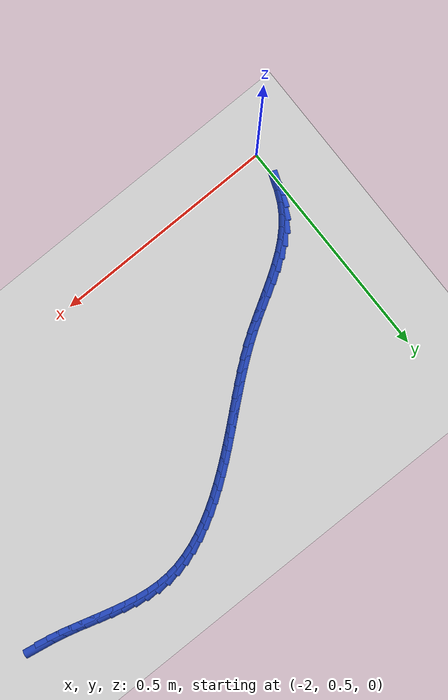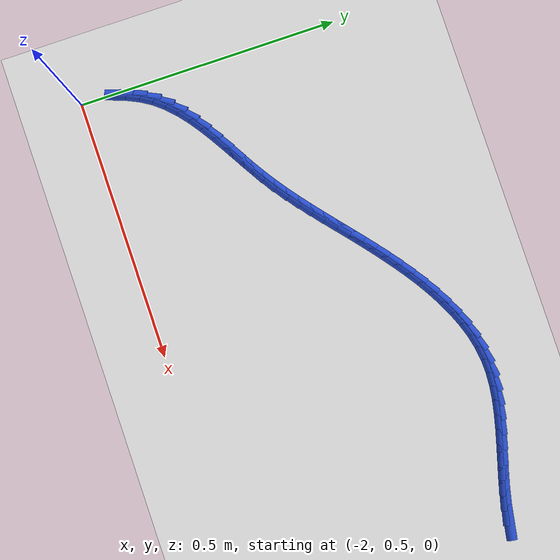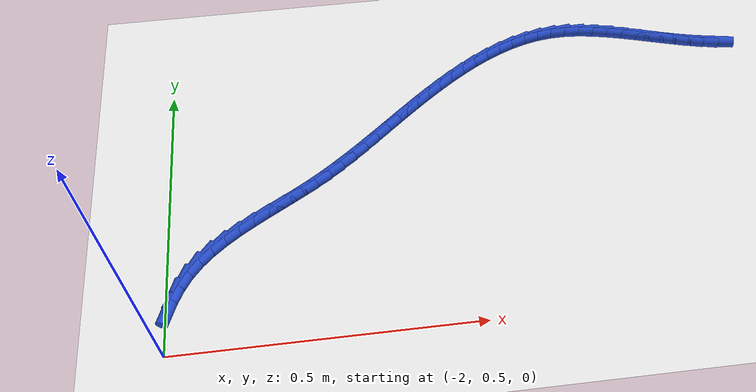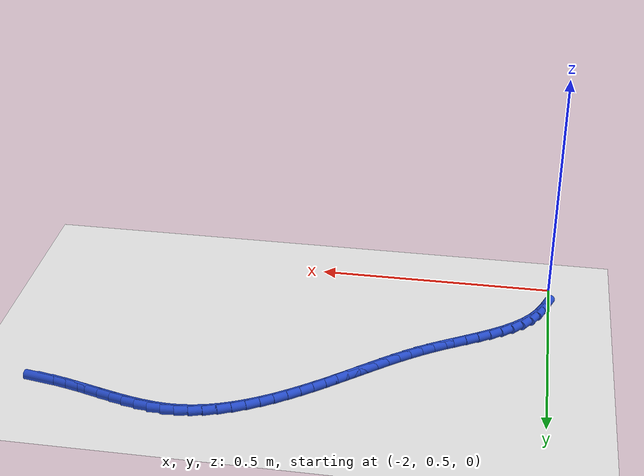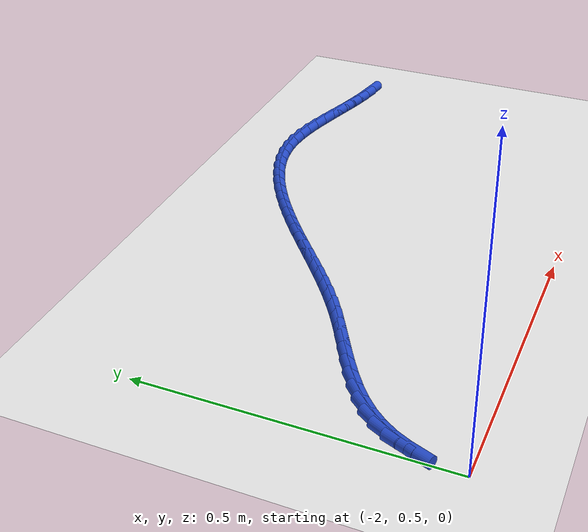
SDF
<sdf version="1.6">
 <world name="default">
  <model name="ground_plane">
   <static>1</static>
   <link name="link">
    <collision name="collision">
     <geometry><plane><normal>0 0 1</normal><size>100 100</size></plane></geometry>
     <surface><friction><ode><mu>100</mu><mu2>50</mu2></ode></friction></surface>
    </collision>
    <visual name="visual">
     <cast_shadows>0</cast_shadows>
     <geometry><plane><normal>0 0 1</normal><size>100 100</size></plane></geometry>
     <material>
      <script><uri>file://media/materials/scripts/gazebo.material</uri><name>Gazebo/WhiteGlow</name></script>
     </material>
    </visual>
   </link>
  </model>
  <model name="line">
   <link name="link_60">
    <pose>-1.0151019509358852 1.0095823974096465 0.01 0 1.57 -0.17348990089580207</pose>
    <collision name="collision">
     <geometry><cylinder><radius>0.01</radius><length>0.08</length></cylinder></geometry>
    </collision>
    <visual name="visual">
     <material>
      <script><name>Gazebo/Blue</name><uri>file://media/materials/scripts/gazebo.material</uri></script>
     </material>
     <geometry><cylinder><radius>0.01</radius><length>0.08</length></cylinder></geometry>
    </visual>
   </link>
   <link name="link_61">
    <pose>-1.0420311237832824 1.0143017814009399 0.01 0 1.57 -0.2217252626227899</pose>
    <collision name="collision">
     <geometry><cylinder><radius>0.01</radius><length>0.08</length></cylinder></geometry>
    </collision>
    <visual name="visual">
     <material>
      <script><name>Gazebo/Blue</name><uri>file://media/materials/scripts/gazebo.material</uri></script>
     </material>
     <geometry><cylinder><radius>0.01</radius><length>0.08</length></cylinder></geometry>
    </visual>
   </link>
   <link name="link_62">
    <pose>-1.0689707790428966 1.0203748325514117 0.01 0 1.57 -0.2544019854768257</pose>
    <collision name="collision">
     <geometry><cylinder><radius>0.01</radius><length>0.08</length></cylinder></geometry>
    </collision>
    <visual name="visual">
     <material>
      <script><name>Gazebo/Blue</name><uri>file://media/materials/scripts/gazebo.material</uri></script>
     </material>
     <geometry><cylinder><radius>0.01</radius><length>0.08</length></cylinder></geometry>
    </visual>
   </link>
   <link name="link_63">
    <pose>-1.095900998937153 1.0273776651554178 0.01 0 1.57 -0.27219795656285345</pose>
    <collision name="collision">
     <geometry><cylinder><radius>0.01</radius><length>0.08</length></cylinder></geometry>
    </collision>
    <visual name="visual">
     <material>
      <script><name>Gazebo/Blue</name><uri>file://media/materials/scripts/gazebo.material</uri></script>
     </material>
     <geometry><cylinder><radius>0.01</radius><length>0.08</length></cylinder></geometry>
    </visual>
   </link>
   <link name="link_64">
    <pose>-1.1228018656884784 1.0348863935073147 0.01 0 1.57 -0.27550348878206676</pose>
    <collision name="collision">
     <geometry><cylinder><radius>0.01</radius><length>0.08</length></cylinder></geometry>
    </collision>
    <visual name="visual">
     <material>
      <script><name>Gazebo/Blue</name><uri>file://media/materials/scripts/gazebo.material</uri></script>
     </material>
     <geometry><cylinder><radius>0.01</radius><length>0.08</length></cylinder></geometry>
    </visual>
   </link>
   <link name="link_65">
    <pose>-1.1496534615192986 1.042477131901458 0.01 0 1.57 -0.26432467537369103</pose>
    <collision name="collision">
     <geometry><cylinder><radius>0.01</radius><length>0.08</length></cylinder></geometry>
    </collision>
    <visual name="visual">
     <material>
      <script><name>Gazebo/Blue</name><uri>file://media/materials/scripts/gazebo.material</uri></script>
     </material>
     <geometry><cylinder><radius>0.01</radius><length>0.08</length></cylinder></geometry>
    </visual>
   </link>
   <link name="link_66">
    <pose>-1.1764358686520393 1.049725994632204 0.01 0 1.57 -0.23826041667342834</pose>
    <collision name="collision">
     <geometry><cylinder><radius>0.01</radius><length>0.08</length></cylinder></geometry>
    </collision>
    <visual name="visual">
     <material>
      <script><name>Gazebo/Blue</name><uri>file://media/materials/scripts/gazebo.material</uri></script>
     </material>
     <geometry><cylinder><radius>0.01</radius><length>0.08</length></cylinder></geometry>
    </visual>
   </link>
   <link name="link_67">
    <pose>-1.2031291693091266 1.0562090959939079 0.01 0 1.57 -0.19654901584674972</pose>
    <collision name="collision">
     <geometry><cylinder><radius>0.01</radius><length>0.08</length></cylinder></geometry>
    </collision>
    <visual name="visual">
     <material>
      <script><name>Gazebo/Blue</name><uri>file://media/materials/scripts/gazebo.material</uri></script>
     </material>
     <geometry><cylinder><radius>0.01</radius><length>0.08</length></cylinder></geometry>
    </visual>
   </link>
   <link name="link_68">
    <pose>-1.2297134457129866 1.061502550280926 0.01 0 1.57 -0.1382125585753608</pose>
    <collision name="collision">
     <geometry><cylinder><radius>0.01</radius><length>0.08</length></cylinder></geometry>
    </collision>
    <visual name="visual">
     <material>
      <script><name>Gazebo/Blue</name><uri>file://media/materials/scripts/gazebo.material</uri></script>
     </material>
     <geometry><cylinder><radius>0.01</radius><length>0.08</length></cylinder></geometry>
    </visual>
   </link>
   <link name="link_69">
    <pose>-1.2561687800860453 1.0651824717876144 0.01 0 1.57 -0.06235626952176293</pose>
    <collision name="collision">
     <geometry><cylinder><radius>0.01</radius><length>0.08</length></cylinder></geometry>
    </collision>
    <visual name="visual">
     <material>
      <script><name>Gazebo/Blue</name><uri>file://media/materials/scripts/gazebo.material</uri></script>
     </material>
     <geometry><cylinder><radius>0.01</radius><length>0.08</length></cylinder></geometry>
    </visual>
   </link>
   <link name="link_70">
    <pose>-1.282475254650729 1.066824974808329 0.01 0 1.57 0.0313038524707301</pose>
    <collision name="collision">
     <geometry><cylinder><radius>0.01</radius><length>0.08</length></cylinder></geometry>
    </collision>
    <visual name="visual">
     <material>
      <script><name>Gazebo/Blue</name><uri>file://media/materials/scripts/gazebo.material</uri></script>
     </material>
     <geometry><cylinder><radius>0.01</radius><length>0.08</length></cylinder></geometry>
    </visual>
   </link>
   <link name="link_71">
    <pose>-1.3086129426936903 1.0660064971098333 0.01 0 1.57 0.1354745483552707</pose>
    <collision name="collision">
     <geometry><cylinder><radius>0.01</radius><length>0.08</length></cylinder></geometry>
    </collision>
    <visual name="visual">
     <material>
      <script><name>Gazebo/Blue</name><uri>file://media/materials/scripts/gazebo.material</uri></script>
     </material>
     <geometry><cylinder><radius>0.01</radius><length>0.08</length></cylinder></geometry>
    </visual>
   </link>
   <link name="link_72">
    <pose>-1.3345573164568127 1.0624700329481653 0.01 0 1.57 0.2319395188891165</pose>
    <collision name="collision">
     <geometry><cylinder><radius>0.01</radius><length>0.08</length></cylinder></geometry>
    </collision>
    <visual name="visual">
     <material>
      <script><name>Gazebo/Blue</name><uri>file://media/materials/scripts/gazebo.material</uri></script>
     </material>
     <geometry><cylinder><radius>0.01</radius><length>0.08</length></cylinder></geometry>
    </visual>
   </link>
   <link name="link_73">
    <pose>-1.3602717497239893 1.0563965372578765 0.01 0 1.57 0.317375319440781</pose>
    <collision name="collision">
     <geometry><cylinder><radius>0.01</radius><length>0.08</length></cylinder></geometry>
    </collision>
    <visual name="visual">
     <material>
      <script><name>Gazebo/Blue</name><uri>file://media/materials/scripts/gazebo.material</uri></script>
     </material>
     <geometry><cylinder><radius>0.01</radius><length>0.08</length></cylinder></geometry>
    </visual>
   </link>
   <link name="link_74">
    <pose>-1.385717651409943 1.0480380926689317 0.01 0 1.57 0.3919684377687647</pose>
    <collision name="collision">
     <geometry><cylinder><radius>0.01</radius><length>0.08</length></cylinder></geometry>
    </collision>
    <visual name="visual">
     <material>
      <script><name>Gazebo/Blue</name><uri>file://media/materials/scripts/gazebo.material</uri></script>
     </material>
     <geometry><cylinder><radius>0.01</radius><length>0.08</length></cylinder></geometry>
    </visual>
   </link>
   <link name="link_75">
    <pose>-1.4108564304293956 1.037646781811295 0.01 0 1.57 0.456379453697414</pose>
    <collision name="collision">
     <geometry><cylinder><radius>0.01</radius><length>0.08</length></cylinder></geometry>
    </collision>
    <visual name="visual">
     <material>
      <script><name>Gazebo/Blue</name><uri>file://media/materials/scripts/gazebo.material</uri></script>
     </material>
     <geometry><cylinder><radius>0.01</radius><length>0.08</length></cylinder></geometry>
    </visual>
   </link>
   <link name="link_76">
    <pose>-1.4356494956970693 1.0254746873149307 0.01 0 1.57 0.5114823510553568</pose>
    <collision name="collision">
     <geometry><cylinder><radius>0.01</radius><length>0.08</length></cylinder></geometry>
    </collision>
    <visual name="visual">
     <material>
      <script><name>Gazebo/Blue</name><uri>file://media/materials/scripts/gazebo.material</uri></script>
     </material>
     <geometry><cylinder><radius>0.01</radius><length>0.08</length></cylinder></geometry>
    </visual>
   </link>
   <link name="link_77">
    <pose>-1.4600582561276858 1.0117738918098034 0.01 0 1.57 0.5581869383137341</pose>
    <collision name="collision">
     <geometry><cylinder><radius>0.01</radius><length>0.08</length></cylinder></geometry>
    </collision>
    <visual name="visual">
     <material>
      <script><name>Gazebo/Blue</name><uri>file://media/materials/scripts/gazebo.material</uri></script>
     </material>
     <geometry><cylinder><radius>0.01</radius><length>0.08</length></cylinder></geometry>
    </visual>
   </link>
   <link name="link_78">
    <pose>-1.4840441206359687 0.9967964779258773 0.01 0 1.57 0.5973328220931737</pose>
    <collision name="collision">
     <geometry><cylinder><radius>0.01</radius><length>0.08</length></cylinder></geometry>
    </collision>
    <visual name="visual">
     <material>
      <script><name>Gazebo/Blue</name><uri>file://media/materials/scripts/gazebo.material</uri></script>
     </material>
     <geometry><cylinder><radius>0.01</radius><length>0.08</length></cylinder></geometry>
    </visual>
   </link>
   <link name="link_79">
    <pose>-1.50756849813664 0.9807945282931176 0.01 0 1.57 0.6296325864887741</pose>
    <collision name="collision">
     <geometry><cylinder><radius>0.01</radius><length>0.08</length></cylinder></geometry>
    </collision>
    <visual name="visual">
     <material>
      <script><name>Gazebo/Blue</name><uri>file://media/materials/scripts/gazebo.material</uri></script>
     </material>
     <geometry><cylinder><radius>0.01</radius><length>0.08</length></cylinder></geometry>
    </visual>
   </link>
   <link name="link_80">
    <pose>-1.5305927975444213 0.9640201255414883 0.01 0 1.57 0.6556435045871363</pose>
    <collision name="collision">
     <geometry><cylinder><radius>0.01</radius><length>0.08</length></cylinder></geometry>
    </collision>
    <visual name="visual">
     <material>
      <script><name>Gazebo/Blue</name><uri>file://media/materials/scripts/gazebo.material</uri></script>
     </material>
     <geometry><cylinder><radius>0.01</radius><length>0.08</length></cylinder></geometry>
    </visual>
   </link>
   <link name="link_81">
    <pose>-1.553078427774035 0.9467253523009532 0.01 0 1.57 0.675752611051536</pose>
    <collision name="collision">
     <geometry><cylinder><radius>0.01</radius><length>0.08</length></cylinder></geometry>
    </collision>
    <visual name="visual">
     <material>
      <script><name>Gazebo/Blue</name><uri>file://media/materials/scripts/gazebo.material</uri></script>
     </material>
     <geometry><cylinder><radius>0.01</radius><length>0.08</length></cylinder></geometry>
    </visual>
   </link>
   <link name="link_82">
    <pose>-1.5749870564986381 0.9291620704523046 0.01 0 1.57 0.6902067509968366</pose>
    <collision name="collision">
     <geometry><cylinder><radius>0.01</radius><length>0.08</length></cylinder></geometry>
    </collision>
    <visual name="visual">
     <material>
      <script><name>Gazebo/Blue</name><uri>file://media/materials/scripts/gazebo.material</uri></script>
     </material>
     <geometry><cylinder><radius>0.01</radius><length>0.08</length></cylinder></geometry>
    </visual>
   </link>
   <link name="link_83">
    <pose>-1.5963386552855237 0.9115324022937841 0.01 0 1.57 0.6989801272872999</pose>
    <collision name="collision">
     <geometry><cylinder><radius>0.01</radius><length>0.08</length></cylinder></geometry>
    </collision>
    <visual name="visual">
     <material>
      <script><name>Gazebo/Blue</name><uri>file://media/materials/scripts/gazebo.material</uri></script>
     </material>
     <geometry><cylinder><radius>0.01</radius><length>0.08</length></cylinder></geometry>
    </visual>
   </link>
   <link name="link_84">
    <pose>-1.6172850144167623 0.8939260143787491 0.01 0 1.57 0.7018116798147105</pose>
    <collision name="collision">
     <geometry><cylinder><radius>0.01</radius><length>0.08</length></cylinder></geometry>
    </collision>
    <visual name="visual">
     <material>
      <script><name>Gazebo/Blue</name><uri>file://media/materials/scripts/gazebo.material</uri></script>
     </material>
     <geometry><cylinder><radius>0.01</radius><length>0.08</length></cylinder></geometry>
    </visual>
   </link>
   <link name="link_85">
    <pose>-1.637996032143512 0.8764171251873822 0.01 0 1.57 0.6985146719682829</pose>
    <collision name="collision">
     <geometry><cylinder><radius>0.01</radius><length>0.08</length></cylinder></geometry>
    </collision>
    <visual name="visual">
     <material>
      <script><name>Gazebo/Blue</name><uri>file://media/materials/scripts/gazebo.material</uri></script>
     </material>
     <geometry><cylinder><radius>0.01</radius><length>0.08</length></cylinder></geometry>
    </visual>
   </link>
   <link name="link_86">
    <pose>-1.658641606716928 0.859079953199866 0.01 0 1.57 0.6890098601482795</pose>
    <collision name="collision">
     <geometry><cylinder><radius>0.01</radius><length>0.08</length></cylinder></geometry>
    </collision>
    <visual name="visual">
     <material>
      <script><name>Gazebo/Blue</name><uri>file://media/materials/scripts/gazebo.material</uri></script>
     </material>
     <geometry><cylinder><radius>0.01</radius><length>0.08</length></cylinder></geometry>
    </visual>
   </link>
   <link name="link_87">
    <pose>-1.6793916363881651 0.841988716896382 0.01 0 1.57 0.673334946599743</pose>
    <collision name="collision">
     <geometry><cylinder><radius>0.01</radius><length>0.08</length></cylinder></geometry>
    </collision>
    <visual name="visual">
     <material>
      <script><name>Gazebo/Blue</name><uri>file://media/materials/scripts/gazebo.material</uri></script>
     </material>
     <geometry><cylinder><radius>0.01</radius><length>0.08</length></cylinder></geometry>
    </visual>
   </link>
   <link name="link_88">
    <pose>-1.7004160194083808 0.8252176347571134 0.01 0 1.57 0.6516557136667185</pose>
    <collision name="collision">
     <geometry><cylinder><radius>0.01</radius><length>0.08</length></cylinder></geometry>
    </collision>
    <visual name="visual">
     <material>
      <script><name>Gazebo/Blue</name><uri>file://media/materials/scripts/gazebo.material</uri></script>
     </material>
     <geometry><cylinder><radius>0.01</radius><length>0.08</length></cylinder></geometry>
    </visual>
   </link>
   <link name="link_89">
    <pose>-1.7218846540287305 0.8088409252622418 0.01 0 1.57 0.6242769112387478</pose>
    <collision name="collision">
     <geometry><cylinder><radius>0.01</radius><length>0.08</length></cylinder></geometry>
    </collision>
    <visual name="visual">
     <material>
      <script><name>Gazebo/Blue</name><uri>file://media/materials/scripts/gazebo.material</uri></script>
     </material>
     <geometry><cylinder><radius>0.01</radius><length>0.08</length></cylinder></geometry>
    </visual>
   </link>
   <link name="link_90">
    <pose>-1.7439674385003705 0.7929328068919499 0.01 0 1.57 0.5916496264576836</pose>
    <collision name="collision">
     <geometry><cylinder><radius>0.01</radius><length>0.08</length></cylinder></geometry>
    </collision>
    <visual name="visual">
     <material>
      <script><name>Gazebo/Blue</name><uri>file://media/materials/scripts/gazebo.material</uri></script>
     </material>
     <geometry><cylinder><radius>0.01</radius><length>0.08</length></cylinder></geometry>
    </visual>
   </link>
   <link name="link_91">
    <pose>-1.7668342702152673 0.7775674975974827 0.01 0 1.57 0.5582480831863609</pose>
    <collision name="collision">
     <geometry><cylinder><radius>0.01</radius><length>0.08</length></cylinder></geometry>
    </collision>
    <visual name="visual">
     <material>
      <script><name>Gazebo/Blue</name><uri>file://media/materials/scripts/gazebo.material</uri></script>
     </material>
     <geometry><cylinder><radius>0.01</radius><length>0.08</length></cylinder></geometry>
    </visual>
   </link>
   <link name="link_92">
    <pose>-1.7905517750524946 0.7627556389257502 0.01 0 1.57 0.5385629107055593</pose>
    <collision name="collision">
     <geometry><cylinder><radius>0.01</radius><length>0.08</length></cylinder></geometry>
    </collision>
    <visual name="visual">
     <material>
      <script><name>Gazebo/Blue</name><uri>file://media/materials/scripts/gazebo.material</uri></script>
     </material>
     <geometry><cylinder><radius>0.01</radius><length>0.08</length></cylinder></geometry>
    </visual>
   </link>
   <link name="link_93">
    <pose>-1.8147983319588759 0.7482688583601029 0.01 0 1.57 0.5352295806216182</pose>
    <collision name="collision">
     <geometry><cylinder><radius>0.01</radius><length>0.08</length></cylinder></geometry>
    </collision>
    <visual name="visual">
     <material>
      <script><name>Gazebo/Blue</name><uri>file://media/materials/scripts/gazebo.material</uri></script>
     </material>
     <geometry><cylinder><radius>0.01</radius><length>0.08</length></cylinder></geometry>
    </visual>
   </link>
   <link name="link_94">
    <pose>-1.8391610987646003 0.7338226254906587 0.01 0 1.57 0.5480389650795627</pose>
    <collision name="collision">
     <geometry><cylinder><radius>0.01</radius><length>0.08</length></cylinder></geometry>
    </collision>
    <visual name="visual">
     <material>
      <script><name>Gazebo/Blue</name><uri>file://media/materials/scripts/gazebo.material</uri></script>
     </material>
     <geometry><cylinder><radius>0.01</radius><length>0.08</length></cylinder></geometry>
    </visual>
   </link>
   <link name="link_95">
    <pose>-1.8632272332998547 0.7191324099075336 0.01 0 1.57 0.5774850228200289</pose>
    <collision name="collision">
     <geometry><cylinder><radius>0.01</radius><length>0.08</length></cylinder></geometry>
    </collision>
    <visual name="visual">
     <material>
      <script><name>Gazebo/Blue</name><uri>file://media/materials/scripts/gazebo.material</uri></script>
     </material>
     <geometry><cylinder><radius>0.01</radius><length>0.08</length></cylinder></geometry>
    </visual>
   </link>
   <link name="link_96">
    <pose>-1.8865838933948271 0.7039136812008452 0.01 0 1.57 0.6247053153947347</pose>
    <collision name="collision">
     <geometry><cylinder><radius>0.01</radius><length>0.08</length></cylinder></geometry>
    </collision>
    <visual name="visual">
     <material>
      <script><name>Gazebo/Blue</name><uri>file://media/materials/scripts/gazebo.material</uri></script>
     </material>
     <geometry><cylinder><radius>0.01</radius><length>0.08</length></cylinder></geometry>
    </visual>
   </link>
   <link name="link_97">
    <pose>-1.9088182368797053 0.6878819089607101 0.01 0 1.57 0.6913078659251062</pose>
    <collision name="collision">
     <geometry><cylinder><radius>0.01</radius><length>0.08</length></cylinder></geometry>
    </collision>
    <visual name="visual">
     <material>
      <script><name>Gazebo/Blue</name><uri>file://media/materials/scripts/gazebo.material</uri></script>
     </material>
     <geometry><cylinder><radius>0.01</radius><length>0.08</length></cylinder></geometry>
    </visual>
   </link>
   <link name="link_98">
    <pose>-1.929517421584677 0.6707525627772457 0.01 0 1.57 0.7789646431810588</pose>
    <collision name="collision">
     <geometry><cylinder><radius>0.01</radius><length>0.08</length></cylinder></geometry>
    </collision>
    <visual name="visual">
     <material>
      <script><name>Gazebo/Blue</name><uri>file://media/materials/scripts/gazebo.material</uri></script>
     </material>
     <geometry><cylinder><radius>0.01</radius><length>0.08</length></cylinder></geometry>
    </visual>
   </link>
   <link name="link_99">
    <pose>-1.94826860533993 0.6522411122405688 0.01 0 1.57 0.8886097507081534</pose>
    <collision name="collision">
     <geometry><cylinder><radius>0.01</radius><length>0.08</length></cylinder></geometry>
    </collision>
    <visual name="visual">
     <material>
      <script><name>Gazebo/Blue</name><uri>file://media/materials/scripts/gazebo.material</uri></script>
     </material>
     <geometry><cylinder><radius>0.01</radius><length>0.08</length></cylinder></geometry>
    </visual>
   </link>
   <link name="link_100">
    <pose>-1.9646589459756527 0.6320630269407965 0.01 0 1.57 1.017055823612287</pose>
    <collision name="collision">
     <geometry><cylinder><radius>0.01</radius><length>0.08</length></cylinder></geometry>
    </collision>
    <visual name="visual">
     <material>
      <script><name>Gazebo/Blue</name><uri>file://media/materials/scripts/gazebo.material</uri></script>
     </material>
     <geometry><cylinder><radius>0.01</radius><length>0.08</length></cylinder></geometry>
    </visual>
   </link>
   <link name="link_101">
    <pose>-1.9783218230756359 0.6099642381712636 0.01 0 1.57 1.1345858184830724</pose>
    <collision name="collision">
     <geometry><cylinder><radius>0.01</radius><length>0.08</length></cylinder></geometry>
    </collision>
    <visual name="visual">
     <material>
      <script><name>Gazebo/Blue</name><uri>file://media/materials/scripts/gazebo.material</uri></script>
     </material>
     <geometry><cylinder><radius>0.01</radius><length>0.08</length></cylinder></geometry>
    </visual>
   </link>
   <link name="link_102">
    <pose>-1.9894617196581459 0.5860670537573712 0.01 0 1.57 1.2220434040830759</pose>
    <collision name="collision">
     <geometry><cylinder><radius>0.01</radius><length>0.08</length></cylinder></geometry>
    </collision>
    <visual name="visual">
     <material>
      <script><name>Gazebo/Blue</name><uri>file://media/materials/scripts/gazebo.material</uri></script>
     </material>
     <geometry><cylinder><radius>0.01</radius><length>0.08</length></cylinder></geometry>
    </visual>
   </link>
  </model>
 </world>
</sdf>
